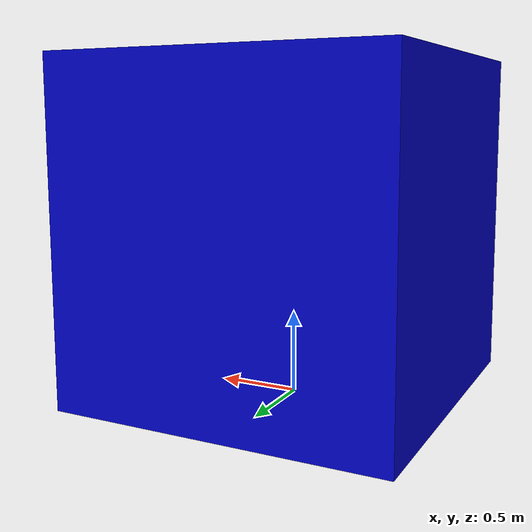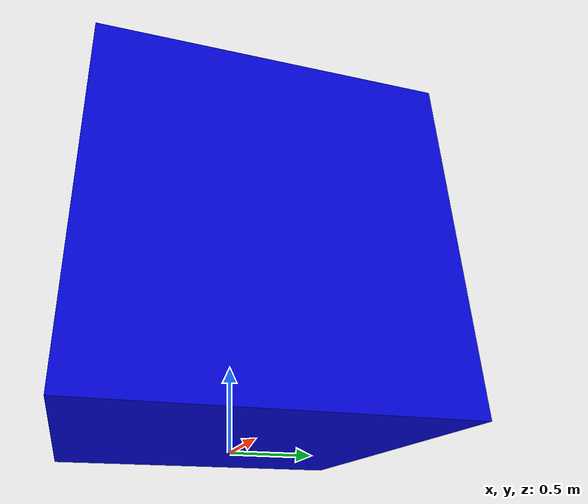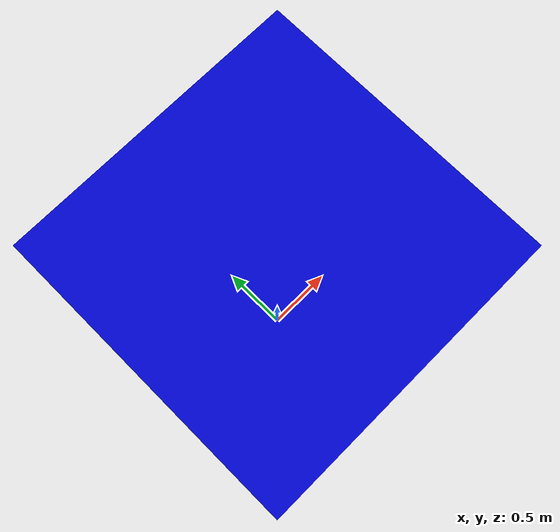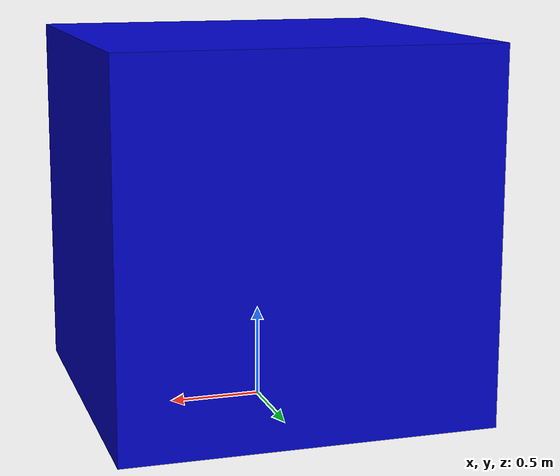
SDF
<?xml version="1.0" ?>
<sdf version="1.5">
  <model name="redCube">
    <link name="link">
      <inertial>
      <pose>0 0 0.0175 0 0 0</pose>
        <mass>1</mass>
	  <inertia>
	    <ixx>0.01</ixx>
	    <ixy>0</ixy>
	    <ixz>0.01</ixz>
	    <iyy>0</iyy>
	    <iyz>0.01</iyz>
	    <izz>0</izz>
	  </inertia>
      </inertial>
      <collision name="collision">
        <pose>0 0 0 0 -0 0</pose>
        <geometry>
          <mesh>
          <uri>model://redCube/redCube.dae</uri>
          </mesh>
        </geometry>
      </collision>
      <visual name="visual">
        <geometry>
          <mesh>
            <uri>model://redCube/redCube.dae</uri>
          </mesh>
        </geometry>
      </visual>
    </link>
  </model>
</sdf>
